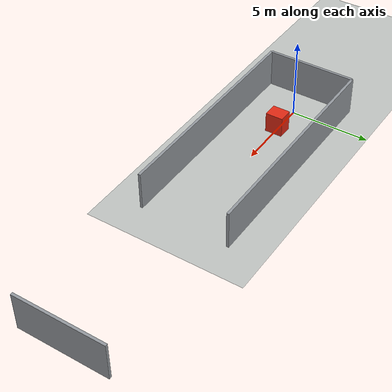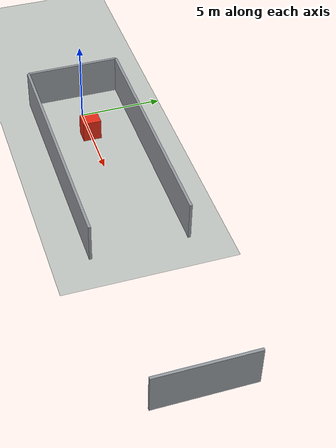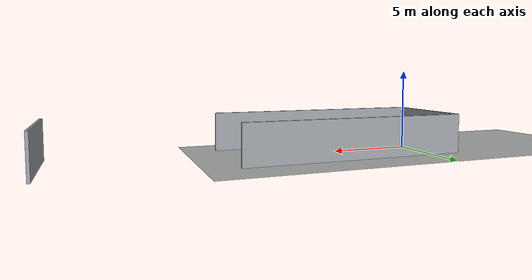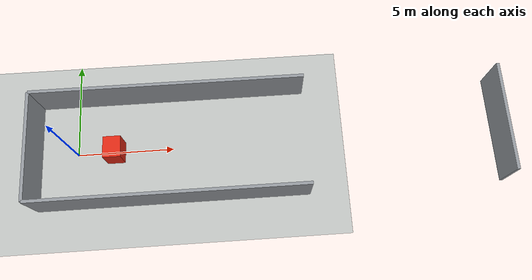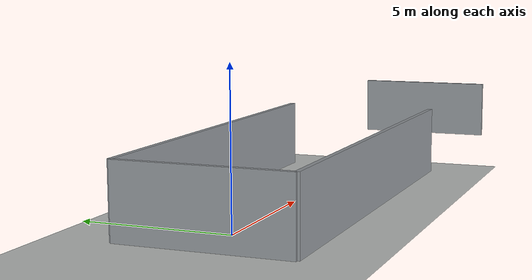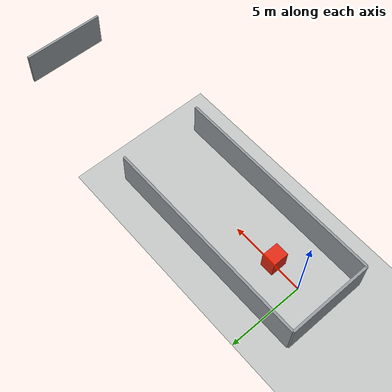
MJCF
<mujoco model="teleop_avoid_field">
  <compiler angle="radian" autolimits="true"/>
  <option gravity="0 0 -9.81" timestep="0.005" integrator="Euler"
          solver="Newton" iterations="100"/>

  <visual>
    <headlight diffuse="0.7 0.7 0.68" ambient="0.35 0.35 0.35" specular="0 0 0"/>
    <global azimuth="-55" elevation="-28" fovy="52"/>
  </visual>

  <asset>
    <texture name="floor_grid" type="2d" builtin="checker"
             rgb1=".82 .83 .82" rgb2=".68 .70 .69" width="512" height="512"/>
    <material name="floor" texture="floor_grid" texrepeat="12 5" reflectance="0.03"/>
    <material name="wall" rgba=".58 .60 .62 1"/>
    <material name="obstacle" rgba=".88 .16 .08 1"/>
  </asset>

  <worldbody>
    <geom name="ground" type="plane" size="14 5 0.1" material="floor"
          conaffinity="1" condim="3"/>

    <!-- The physical obstacle blocks the direct forward corridor but leaves
         enough room on either side for the padded Thunder footprint. -->
    <geom name="detour_obstacle" type="box" pos="2.0 0 0.65" size="0.45 0.55 0.65"
          material="obstacle" conaffinity="1" condim="3"/>

    <geom name="left_wall" type="box" pos="5.0 2.8 1.2" size="7.0 0.08 1.2"
          material="wall" conaffinity="1" condim="3"/>
    <geom name="right_wall" type="box" pos="5.0 -2.8 1.2" size="7.0 0.08 1.2"
          material="wall" conaffinity="1" condim="3"/>
    <geom name="rear_wall" type="box" pos="-2.0 0 1.2" size="0.08 2.8 1.2"
          material="wall" conaffinity="1" condim="3"/>
    <geom name="front_wall" type="box" pos="22.0 0 1.2" size="0.08 2.8 1.2"
          material="wall" conaffinity="1" condim="3"/>
    <light name="sun" pos="2 -4 10" dir="0.2 0.3 -1" diffuse=".8 .8 .76"/>
    <light name="fill" pos="7 4 6" dir="-0.5 -0.3 -1" diffuse=".3 .32 .34"/>
  </worldbody>
</mujoco>
